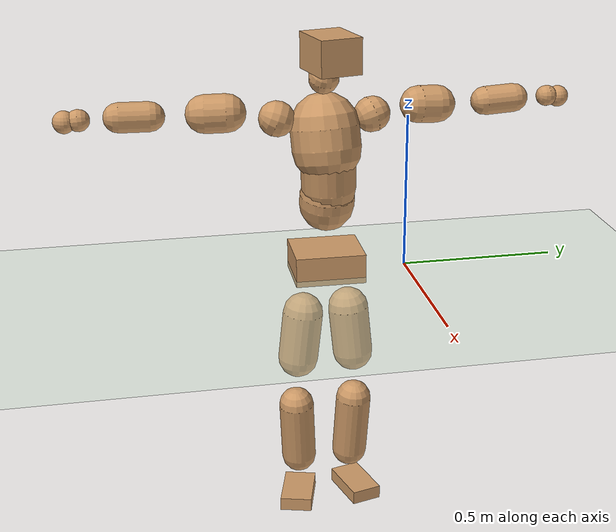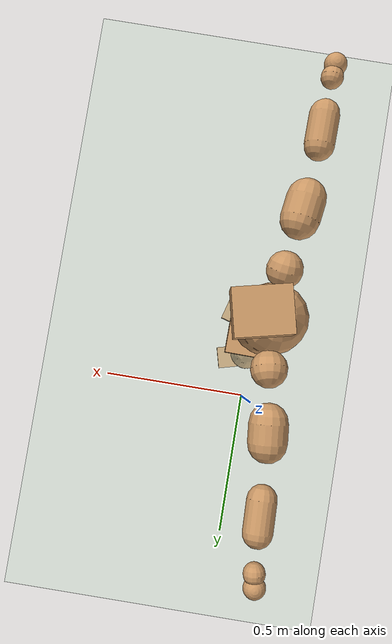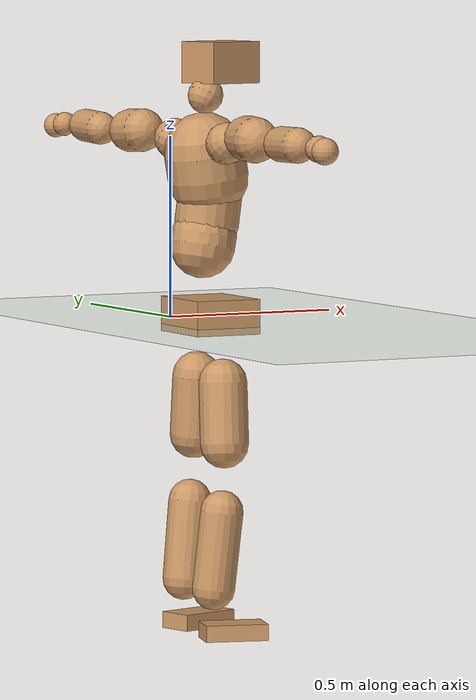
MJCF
<mujoco model="humanoid">
  <compiler coordinate="local" angle="radian"/>
  <default>
    <joint damping="0.0" armature="0.01" stiffness="0.0" limited="true"/>
    <geom conaffinity="1" condim="3" contype="7" margin="0.001" rgba="0.8 0.6 .4 1"/>
  </default>
  <asset>
    <texture type="skybox" builtin="gradient" rgb1=".4 .5 .6" rgb2="0 0 0" width="100" height="100"/>
    <texture builtin="flat" height="1278" mark="cross" markrgb="1 1 1" name="texgeom" random="0.01" rgb1="0.8 0.6 0.4" rgb2="0.8 0.6 0.4" type="cube" width="127"/>
    <texture builtin="checker" height="100" name="texplane" rgb1="0 0 0" rgb2="0.8 0.8 0.8" type="2d" width="100"/>
    <material name="MatPlane" reflectance="0.5" shininess="1" specular="1" texrepeat="60 60" texture="texplane"/>
    <material name="geom" texture="texgeom" texuniform="true"/>
  </asset>
  <worldbody>
    <light cutoff="100" diffuse="1 1 1" dir="-0 0 -1.3" directional="true" exponent="1" pos="0 0 1.3" specular=".1 .1 .1"/>
    <geom conaffinity="1" condim="3" name="floor" pos="0 0 0" rgba="0.8 0.9 0.8 1" size="100 100 .2" type="plane" material="MatPlane"/>
    <body name="Pelvis" pos="0.0004 -0.2593 0.0342">
      <freejoint name="Pelvis"/>
      <geom type="box" contype="1" conaffinity="1" density="5359.374758" pos="-0.0116 0.0002 -0.0079" size="0.0942 0.1128 0.0476" quat="1.0000 0.0000 0.0000 -0.0087" name="Pelvis"/>
      <body name="L_Hip" pos="-0.0153 0.0648 -0.0837">
        <joint name="L_Hip_x" type="hinge" pos="0 0 0" axis="1 0 0" stiffness="1600" damping="160" armature="0.02" range="-180.0000 180.0000"/>
        <joint name="L_Hip_y" type="hinge" pos="0 0 0" axis="0 1 0" stiffness="1600" damping="160" armature="0.02" range="-180.0000 180.0000"/>
        <joint name="L_Hip_z" type="hinge" pos="0 0 0" axis="0 0 1" stiffness="1600" damping="160" armature="0.02" range="-180.0000 180.0000"/>
        <geom type="capsule" contype="1" conaffinity="1" density="2040.816327" size="0.0661" fromto="0.0003 0.0099 -0.0956 0.0007 0.0266 -0.2581" name="L_Hip"/>
        <body name="L_Knee" pos="0.001 0.0365 -0.3536">
          <joint name="L_Knee_x" type="hinge" pos="0 0 0" axis="1 0 0" stiffness="1600" damping="160" armature="0.02" range="-180.0000 180.0000"/>
          <joint name="L_Knee_y" type="hinge" pos="0 0 0" axis="0 1 0" stiffness="1600" damping="160" armature="0.02" range="-180.0000 180.0000"/>
          <joint name="L_Knee_z" type="hinge" pos="0 0 0" axis="0 0 1" stiffness="1600" damping="160" armature="0.02" range="-180.0000 180.0000"/>
          <geom type="capsule" contype="1" conaffinity="1" density="1234.567901" size="0.0587" fromto="-0.0093 -0.0036 -0.0881 -0.0319 -0.0122 -0.3019" name="L_Knee"/>
          <body name="L_Ankle" pos="-0.0412 -0.0158 -0.3901">
            <joint name="L_Ankle_x" type="hinge" pos="0 0 0" axis="1 0 0" stiffness="1600" damping="160" armature="0.02" range="-180.0000 180.0000"/>
            <joint name="L_Ankle_y" type="hinge" pos="0 0 0" axis="0 1 0" stiffness="1600" damping="160" armature="0.02" range="-180.0000 180.0000"/>
            <joint name="L_Ankle_z" type="hinge" pos="0 0 0" axis="0 0 1" stiffness="1600" damping="160" armature="0.02" range="-180.0000 180.0000"/>
            <geom type="box" contype="1" conaffinity="1" density="1000.00005" pos="0.0597 0.0156 -0.0279" size="0.0873 0.0502 0.0224" quat="0.9918 0.0000 0.0000 0.1277" name="L_Ankle"/>
            <body name="L_Toe" pos="0.1194 0.0313 -0.0558">
              <joint name="L_Toe_x" type="hinge" pos="0 0 0" axis="1 0 0" stiffness="1000" damping="100" armature="0.02" range="-180.0000 180.0000"/>
              <joint name="L_Toe_y" type="hinge" pos="0 0 0" axis="0 1 0" stiffness="1000" damping="100" armature="0.02" range="-180.0000 180.0000"/>
              <joint name="L_Toe_z" type="hinge" pos="0 0 0" axis="0 0 1" stiffness="1000" damping="100" armature="0.02" range="-180.0000 180.0000"/>
              <geom type="box" contype="1" conaffinity="1" density="8347828.28291" pos="0.0000 0.0000 0.0278" size="0.001 0.0025 0.0011" quat="0.9911 0.0000 0.0000 0.1333" name="L_Toe"/>
            </body>
          </body>
        </body>
      </body>
      <body name="R_Hip" pos="-0.0113 -0.0677 -0.0911">
        <joint name="R_Hip_x" type="hinge" pos="0 0 0" axis="1 0 0" stiffness="1600" damping="160" armature="0.02" range="-180.0000 180.0000"/>
        <joint name="R_Hip_y" type="hinge" pos="0 0 0" axis="0 1 0" stiffness="1600" damping="160" armature="0.02" range="-180.0000 180.0000"/>
        <joint name="R_Hip_z" type="hinge" pos="0 0 0" axis="0 0 1" stiffness="1600" damping="160" armature="0.02" range="-180.0000 180.0000"/>
        <geom type="capsule" contype="1" conaffinity="1" density="2040.816327" size="0.0659" fromto="-0.0023 -0.0099 -0.0954 -0.0063 -0.0269 -0.2606" name="R_Hip"/>
        <body name="R_Knee" pos="-0.0086 -0.0368 -0.356">
          <joint name="R_Knee_x" type="hinge" pos="0 0 0" axis="1 0 0" stiffness="1600" damping="160" armature="0.02" range="-180.0000 180.0000"/>
          <joint name="R_Knee_y" type="hinge" pos="0 0 0" axis="0 1 0" stiffness="1600" damping="160" armature="0.02" range="-180.0000 180.0000"/>
          <joint name="R_Knee_z" type="hinge" pos="0 0 0" axis="0 0 1" stiffness="1600" damping="160" armature="0.02" range="-180.0000 180.0000"/>
          <geom type="capsule" contype="1" conaffinity="1" density="1234.567901" size="0.0585" fromto="-0.0084 0.0044 -0.0880 -0.0285 0.0148 -0.2977" name="R_Knee"/>
          <body name="R_Ankle" pos="-0.0369 0.0191 -0.3857">
            <joint name="R_Ankle_x" type="hinge" pos="0 0 0" axis="1 0 0" stiffness="1600" damping="160" armature="0.02" range="-180.0000 180.0000"/>
            <joint name="R_Ankle_y" type="hinge" pos="0 0 0" axis="0 1 0" stiffness="1600" damping="160" armature="0.02" range="-180.0000 180.0000"/>
            <joint name="R_Ankle_z" type="hinge" pos="0 0 0" axis="0 0 1" stiffness="1600" damping="160" armature="0.02" range="-180.0000 180.0000"/>
            <geom type="box" contype="1" conaffinity="1" density="999.999964" pos="0.0626 -0.0174 -0.0297" size="0.086 0.0526 0.0223" quat="0.9908 0.0000 0.0000 -0.1355" name="R_Ankle"/>
            <body name="R_Toe" pos="0.1252 -0.0349 -0.0594">
              <joint name="R_Toe_x" type="hinge" pos="0 0 0" axis="1 0 0" stiffness="1000" damping="100" armature="0.02" range="-180.0000 180.0000"/>
              <joint name="R_Toe_y" type="hinge" pos="0 0 0" axis="0 1 0" stiffness="1000" damping="100" armature="0.02" range="-180.0000 180.0000"/>
              <joint name="R_Toe_z" type="hinge" pos="0 0 0" axis="0 0 1" stiffness="1000" damping="100" armature="0.02" range="-180.0000 180.0000"/>
              <geom type="box" contype="1" conaffinity="1" density="7656695.756488" pos="0.0000 0.0000 0.0297" size="0.0012 0.0026 0.0011" quat="0.9920 0.0000 0.0000 -0.1262" name="R_Toe"/>
            </body>
          </body>
        </body>
      </body>
      <body name="Torso" pos="-0.0428 0.004 0.1272">
        <joint name="Torso_x" type="hinge" pos="0 0 0" axis="1 0 0" stiffness="2000" damping="200" armature="0.02" range="-180.0000 180.0000"/>
        <joint name="Torso_y" type="hinge" pos="0 0 0" axis="0 1 0" stiffness="2000" damping="200" armature="0.02" range="-180.0000 180.0000"/>
        <joint name="Torso_z" type="hinge" pos="0 0 0" axis="0 0 1" stiffness="2000" damping="200" armature="0.02" range="-180.0000 180.0000"/>
        <geom type="capsule" contype="1" conaffinity="1" density="2040.816327" size="0.0886" fromto="0.0171 0.0027 0.0869 0.0107 0.0017 0.0545" name="Torso"/>
        <body name="Spine" pos="0.0278 0.0044 0.1414">
          <joint name="Spine_x" type="hinge" pos="0 0 0" axis="1 0 0" stiffness="2000" damping="200" armature="0.02" range="-180.0000 180.0000"/>
          <joint name="Spine_y" type="hinge" pos="0 0 0" axis="0 1 0" stiffness="2000" damping="200" armature="0.02" range="-180.0000 180.0000"/>
          <joint name="Spine_z" type="hinge" pos="0 0 0" axis="0 0 1" stiffness="2000" damping="200" armature="0.02" range="-180.0000 180.0000"/>
          <geom type="capsule" contype="1" conaffinity="1" density="2040.816327" size="0.0875" fromto="0.0093 -0.0043 0.0869 -0.0031 0.0014 -0.0292" name="Spine"/>
          <body name="Chest" pos="0.0062 -0.0029 0.0577">
            <joint name="Chest_x" type="hinge" pos="0 0 0" axis="1 0 0" stiffness="2000" damping="200" armature="0.02" range="-180.0000 180.0000"/>
            <joint name="Chest_y" type="hinge" pos="0 0 0" axis="0 1 0" stiffness="2000" damping="200" armature="0.02" range="-180.0000 180.0000"/>
            <joint name="Chest_z" type="hinge" pos="0 0 0" axis="0 0 1" stiffness="2000" damping="200" armature="0.02" range="-180.0000 180.0000"/>
            <geom type="capsule" contype="1" conaffinity="1" density="2040.816327" size="0.1104" fromto="-0.0211 -0.0066 0.1082 -0.0083 -0.0026 0.0426" name="Chest"/>
            <body name="Neck" pos="-0.0448 -0.0143 0.2198">
              <joint name="Neck_x" type="hinge" pos="0 0 0" axis="1 0 0" stiffness="1000" damping="100" armature="0.02" range="-180.0000 180.0000"/>
              <joint name="Neck_y" type="hinge" pos="0 0 0" axis="0 1 0" stiffness="1000" damping="100" armature="0.02" range="-180.0000 180.0000"/>
              <joint name="Neck_z" type="hinge" pos="0 0 0" axis="0 0 1" stiffness="1000" damping="100" armature="0.02" range="-180.0000 180.0000"/>
              <geom type="capsule" contype="1" conaffinity="1" density="1000" size="0.048" fromto="0.0248 0.0049 0.0429 0.0258 0.0051 0.0446" name="Neck"/>
              <body name="Head" pos="0.0507 0.0101 0.0875">
                <joint name="Head_x" type="hinge" pos="0 0 0" axis="1 0 0" stiffness="1000" damping="100" armature="0.02" range="-180.0000 180.0000"/>
                <joint name="Head_y" type="hinge" pos="0 0 0" axis="0 1 0" stiffness="1000" damping="100" armature="0.02" range="-180.0000 180.0000"/>
                <joint name="Head_z" type="hinge" pos="0 0 0" axis="0 0 1" stiffness="1000" damping="100" armature="0.02" range="-180.0000 180.0000"/>
                <geom type="box" contype="1" conaffinity="1" density="2250.000098" pos="0.0263 0.0060 0.0448" size="0.0815 0.0671 0.0564" quat="0.9937 0.0000 0.0000 0.1124" name="Head"/>
              </body>
            </body>
            <body name="L_Thorax" pos="-0.0186 0.0794 0.1166">
              <joint name="L_Thorax_x" type="hinge" pos="0 0 0" axis="1 0 0" stiffness="1000" damping="100" armature="0.02" range="-180.0000 180.0000"/>
              <joint name="L_Thorax_y" type="hinge" pos="0 0 0" axis="0 1 0" stiffness="1000" damping="100" armature="0.02" range="-180.0000 180.0000"/>
              <joint name="L_Thorax_z" type="hinge" pos="0 0 0" axis="0 0 1" stiffness="1000" damping="100" armature="0.02" range="-180.0000 180.0000"/>
              <geom type="capsule" contype="1" conaffinity="1" density="1000" size="0.0568" fromto="-0.0127 0.0668 0.0223 -0.0130 0.0687 0.0229" name="L_Thorax"/>
              <body name="L_Shoulder" pos="-0.0257 0.1355 0.0452">
                <joint name="L_Shoulder_x" type="hinge" pos="0 0 0" axis="1 0 0" stiffness="1000" damping="100" armature="0.02" range="-720.0000 720.0000"/>
                <joint name="L_Shoulder_y" type="hinge" pos="0 0 0" axis="0 1 0" stiffness="1000" damping="100" armature="0.02" range="-720.0000 720.0000"/>
                <joint name="L_Shoulder_z" type="hinge" pos="0 0 0" axis="0 0 1" stiffness="1000" damping="100" armature="0.02" range="-720.0000 720.0000"/>
                <geom type="capsule" contype="1" conaffinity="1" density="1000" size="0.0599" fromto="-0.0087 0.0894 -0.0048 -0.0145 0.1488 -0.0079" name="L_Shoulder"/>
                <body name="L_Elbow" pos="-0.0232 0.2382 -0.0127">
                  <joint name="L_Elbow_x" type="hinge" pos="0 0 0" axis="1 0 0" stiffness="1000" damping="100" armature="0.02" range="-720.0000 720.0000"/>
                  <joint name="L_Elbow_y" type="hinge" pos="0 0 0" axis="0 1 0" stiffness="1000" damping="100" armature="0.02" range="-720.0000 720.0000"/>
                  <joint name="L_Elbow_z" type="hinge" pos="0 0 0" axis="0 0 1" stiffness="1000" damping="100" armature="0.02" range="-720.0000 720.0000"/>
                  <geom type="capsule" contype="1" conaffinity="1" density="1000" size="0.0458" fromto="-0.0015 0.0757 0.0038 -0.0034 0.1718 0.0087" name="L_Elbow"/>
                  <body name="L_Wrist" pos="-0.0049 0.2475 0.0125">
                    <joint name="L_Wrist_x" type="hinge" pos="0 0 0" axis="1 0 0" stiffness="600" damping="60" armature="0.02" range="-180.0000 180.0000"/>
                    <joint name="L_Wrist_y" type="hinge" pos="0 0 0" axis="0 1 0" stiffness="600" damping="60" armature="0.02" range="-180.0000 180.0000"/>
                    <joint name="L_Wrist_z" type="hinge" pos="0 0 0" axis="0 0 1" stiffness="600" damping="60" armature="0.02" range="-180.0000 180.0000"/>
                    <geom type="capsule" contype="1" conaffinity="1" density="1000" size="0.0334" fromto="-0.0070 0.0402 -0.0051 -0.0073 0.0422 -0.0053" name="L_Wrist"/>
                    <body name="L_Hand" pos="-0.0143 0.0824 -0.0104">
                      <joint name="L_Hand_x" type="hinge" pos="0 0 0" axis="1 0 0" stiffness="600" damping="60" armature="0.02" range="-180.0000 180.0000"/>
                      <joint name="L_Hand_y" type="hinge" pos="0 0 0" axis="0 1 0" stiffness="600" damping="60" armature="0.02" range="-180.0000 180.0000"/>
                      <joint name="L_Hand_z" type="hinge" pos="0 0 0" axis="0 0 1" stiffness="600" damping="60" armature="0.02" range="-180.0000 180.0000"/>
                      <geom type="sphere" contype="1" conaffinity="1" density="1000" size="0.0342" pos="0.0000 0.0000 0.0000" name="L_Hand"/>
                    </body>
                  </body>
                </body>
              </body>
            </body>
            <body name="R_Thorax" pos="-0.0247 -0.0928 0.1158">
              <joint name="R_Thorax_x" type="hinge" pos="0 0 0" axis="1 0 0" stiffness="1000" damping="100" armature="0.02" range="-180.0000 180.0000"/>
              <joint name="R_Thorax_y" type="hinge" pos="0 0 0" axis="0 1 0" stiffness="1000" damping="100" armature="0.02" range="-180.0000 180.0000"/>
              <joint name="R_Thorax_z" type="hinge" pos="0 0 0" axis="0 0 1" stiffness="1000" damping="100" armature="0.02" range="-180.0000 180.0000"/>
              <geom type="capsule" contype="1" conaffinity="1" density="1000" size="0.0567" fromto="-0.0067 -0.0619 0.0237 -0.0069 -0.0637 0.0244" name="R_Thorax"/>
              <body name="R_Shoulder" pos="-0.0137 -0.1256 0.0481">
                <joint name="R_Shoulder_x" type="hinge" pos="0 0 0" axis="1 0 0" stiffness="1000" damping="100" armature="0.02" range="-720.0000 720.0000"/>
                <joint name="R_Shoulder_y" type="hinge" pos="0 0 0" axis="0 1 0" stiffness="1000" damping="100" armature="0.02" range="-720.0000 720.0000"/>
                <joint name="R_Shoulder_z" type="hinge" pos="0 0 0" axis="0 0 1" stiffness="1000" damping="100" armature="0.02" range="-720.0000 720.0000"/>
                <geom type="capsule" contype="1" conaffinity="1" density="1000" size="0.0607" fromto="-0.0124 -0.0898 -0.0030 -0.0218 -0.1571 -0.0052" name="R_Shoulder"/>
                <body name="R_Elbow" pos="-0.0342 -0.247 -0.0082">
                  <joint name="R_Elbow_x" type="hinge" pos="0 0 0" axis="1 0 0" stiffness="1000" damping="100" armature="0.02" range="-720.0000 720.0000"/>
                  <joint name="R_Elbow_y" type="hinge" pos="0 0 0" axis="0 1 0" stiffness="1000" damping="100" armature="0.02" range="-720.0000 720.0000"/>
                  <joint name="R_Elbow_z" type="hinge" pos="0 0 0" axis="0 0 1" stiffness="1000" damping="100" armature="0.02" range="-720.0000 720.0000"/>
                  <geom type="capsule" contype="1" conaffinity="1" density="1000" size="0.0468" fromto="-0.0014 -0.0768 0.0006 -0.0031 -0.1726 0.0014" name="R_Elbow"/>
                  <body name="R_Wrist" pos="-0.0045 -0.2494 0.002">
                    <joint name="R_Wrist_x" type="hinge" pos="0 0 0" axis="1 0 0" stiffness="600" damping="60" armature="0.02" range="-180.0000 180.0000"/>
                    <joint name="R_Wrist_y" type="hinge" pos="0 0 0" axis="0 1 0" stiffness="600" damping="60" armature="0.02" range="-180.0000 180.0000"/>
                    <joint name="R_Wrist_z" type="hinge" pos="0 0 0" axis="0 0 1" stiffness="600" damping="60" armature="0.02" range="-180.0000 180.0000"/>
                    <geom type="capsule" contype="1" conaffinity="1" density="1000" size="0.0347" fromto="-0.0045 -0.0420 -0.0042 -0.0047 -0.0440 -0.0044" name="R_Wrist"/>
                    <body name="R_Hand" pos="-0.0092 -0.086 -0.0086">
                      <joint name="R_Hand_x" type="hinge" pos="0 0 0" axis="1 0 0" stiffness="600" damping="60" armature="0.02" range="-180.0000 180.0000"/>
                      <joint name="R_Hand_y" type="hinge" pos="0 0 0" axis="0 1 0" stiffness="600" damping="60" armature="0.02" range="-180.0000 180.0000"/>
                      <joint name="R_Hand_z" type="hinge" pos="0 0 0" axis="0 0 1" stiffness="600" damping="60" armature="0.02" range="-180.0000 180.0000"/>
                      <geom type="sphere" contype="1" conaffinity="1" density="1000" size="0.0352" pos="0.0000 0.0000 0.0000" name="R_Hand"/>
                    </body>
                  </body>
                </body>
              </body>
            </body>
          </body>
        </body>
      </body>
    </body>
  </worldbody>
  <actuator>
    <motor name="L_Hip_x" joint="L_Hip_x" gear="500"/>
    <motor name="L_Hip_y" joint="L_Hip_y" gear="500"/>
    <motor name="L_Hip_z" joint="L_Hip_z" gear="500"/>
    <motor name="L_Knee_x" joint="L_Knee_x" gear="500"/>
    <motor name="L_Knee_y" joint="L_Knee_y" gear="500"/>
    <motor name="L_Knee_z" joint="L_Knee_z" gear="500"/>
    <motor name="L_Ankle_x" joint="L_Ankle_x" gear="500"/>
    <motor name="L_Ankle_y" joint="L_Ankle_y" gear="500"/>
    <motor name="L_Ankle_z" joint="L_Ankle_z" gear="500"/>
    <motor name="L_Toe_x" joint="L_Toe_x" gear="500"/>
    <motor name="L_Toe_y" joint="L_Toe_y" gear="500"/>
    <motor name="L_Toe_z" joint="L_Toe_z" gear="500"/>
    <motor name="R_Hip_x" joint="R_Hip_x" gear="500"/>
    <motor name="R_Hip_y" joint="R_Hip_y" gear="500"/>
    <motor name="R_Hip_z" joint="R_Hip_z" gear="500"/>
    <motor name="R_Knee_x" joint="R_Knee_x" gear="500"/>
    <motor name="R_Knee_y" joint="R_Knee_y" gear="500"/>
    <motor name="R_Knee_z" joint="R_Knee_z" gear="500"/>
    <motor name="R_Ankle_x" joint="R_Ankle_x" gear="500"/>
    <motor name="R_Ankle_y" joint="R_Ankle_y" gear="500"/>
    <motor name="R_Ankle_z" joint="R_Ankle_z" gear="500"/>
    <motor name="R_Toe_x" joint="R_Toe_x" gear="500"/>
    <motor name="R_Toe_y" joint="R_Toe_y" gear="500"/>
    <motor name="R_Toe_z" joint="R_Toe_z" gear="500"/>
    <motor name="Torso_x" joint="Torso_x" gear="500"/>
    <motor name="Torso_y" joint="Torso_y" gear="500"/>
    <motor name="Torso_z" joint="Torso_z" gear="500"/>
    <motor name="Spine_x" joint="Spine_x" gear="500"/>
    <motor name="Spine_y" joint="Spine_y" gear="500"/>
    <motor name="Spine_z" joint="Spine_z" gear="500"/>
    <motor name="Chest_x" joint="Chest_x" gear="500"/>
    <motor name="Chest_y" joint="Chest_y" gear="500"/>
    <motor name="Chest_z" joint="Chest_z" gear="500"/>
    <motor name="Neck_x" joint="Neck_x" gear="500"/>
    <motor name="Neck_y" joint="Neck_y" gear="500"/>
    <motor name="Neck_z" joint="Neck_z" gear="500"/>
    <motor name="Head_x" joint="Head_x" gear="500"/>
    <motor name="Head_y" joint="Head_y" gear="500"/>
    <motor name="Head_z" joint="Head_z" gear="500"/>
    <motor name="L_Thorax_x" joint="L_Thorax_x" gear="500"/>
    <motor name="L_Thorax_y" joint="L_Thorax_y" gear="500"/>
    <motor name="L_Thorax_z" joint="L_Thorax_z" gear="500"/>
    <motor name="L_Shoulder_x" joint="L_Shoulder_x" gear="500"/>
    <motor name="L_Shoulder_y" joint="L_Shoulder_y" gear="500"/>
    <motor name="L_Shoulder_z" joint="L_Shoulder_z" gear="500"/>
    <motor name="L_Elbow_x" joint="L_Elbow_x" gear="500"/>
    <motor name="L_Elbow_y" joint="L_Elbow_y" gear="500"/>
    <motor name="L_Elbow_z" joint="L_Elbow_z" gear="500"/>
    <motor name="L_Wrist_x" joint="L_Wrist_x" gear="500"/>
    <motor name="L_Wrist_y" joint="L_Wrist_y" gear="500"/>
    <motor name="L_Wrist_z" joint="L_Wrist_z" gear="500"/>
    <motor name="L_Hand_x" joint="L_Hand_x" gear="500"/>
    <motor name="L_Hand_y" joint="L_Hand_y" gear="500"/>
    <motor name="L_Hand_z" joint="L_Hand_z" gear="500"/>
    <motor name="R_Thorax_x" joint="R_Thorax_x" gear="500"/>
    <motor name="R_Thorax_y" joint="R_Thorax_y" gear="500"/>
    <motor name="R_Thorax_z" joint="R_Thorax_z" gear="500"/>
    <motor name="R_Shoulder_x" joint="R_Shoulder_x" gear="500"/>
    <motor name="R_Shoulder_y" joint="R_Shoulder_y" gear="500"/>
    <motor name="R_Shoulder_z" joint="R_Shoulder_z" gear="500"/>
    <motor name="R_Elbow_x" joint="R_Elbow_x" gear="500"/>
    <motor name="R_Elbow_y" joint="R_Elbow_y" gear="500"/>
    <motor name="R_Elbow_z" joint="R_Elbow_z" gear="500"/>
    <motor name="R_Wrist_x" joint="R_Wrist_x" gear="500"/>
    <motor name="R_Wrist_y" joint="R_Wrist_y" gear="500"/>
    <motor name="R_Wrist_z" joint="R_Wrist_z" gear="500"/>
    <motor name="R_Hand_x" joint="R_Hand_x" gear="500"/>
    <motor name="R_Hand_y" joint="R_Hand_y" gear="500"/>
    <motor name="R_Hand_z" joint="R_Hand_z" gear="500"/>
  </actuator>
  <contact>
    <exclude body1="Torso" body2="Chest"/>
    <exclude body1="Head" body2="Chest"/>
    <exclude body1="R_Knee" body2="R_Toe"/>
    <exclude body1="R_Knee" body2="L_Ankle"/>
    <exclude body1="R_Knee" body2="L_Toe"/>
    <exclude body1="L_Knee" body2="L_Toe"/>
    <exclude body1="L_Knee" body2="R_Ankle"/>
    <exclude body1="L_Knee" body2="R_Toe"/>
    <exclude body1="L_Shoulder" body2="Chest"/>
    <exclude body1="R_Shoulder" body2="Chest"/>
  </contact>
  <sensor/>
  <size njmax="700" nconmax="700"/>
</mujoco>
